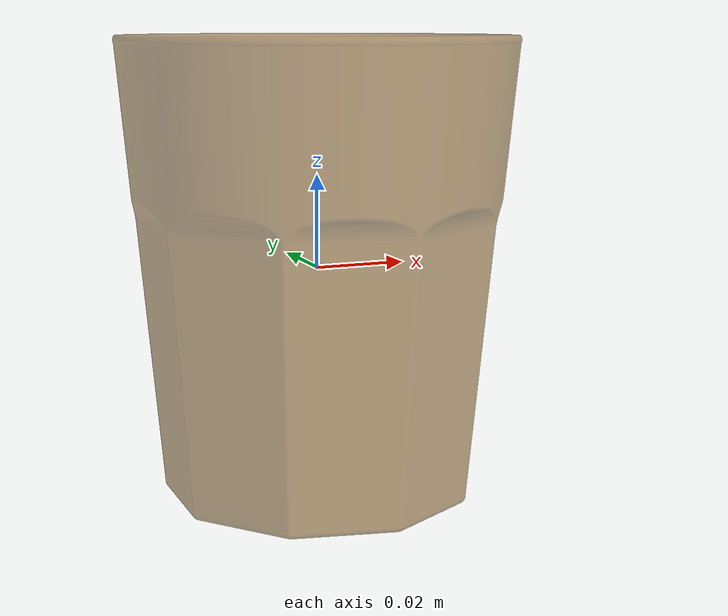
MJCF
<mujoco model="target">
  <compiler meshdir="assets" texturedir="assets" autolimits="true"/>
  <default>
    <default class="visual">
      <geom group="2" type="mesh" contype="0" conaffinity="0"/>
    </default>
    <default class="collision">
      <geom group="3" type="mesh"/>
    </default>
  </default>
  <asset>
    <material name="115,71,10" specular="1.0" shininess="1.0" rgba="0.450980 0.278431 0.039216 0.550000"/>
    <mesh file="object.obj"/>
  </asset>
  <worldbody>
    <body name="object">
      <geom material="115,71,10" mesh="object" class="visual"/>
      <geom mesh="object" class="collision"/>
    </body>
  </worldbody>
</mujoco>
